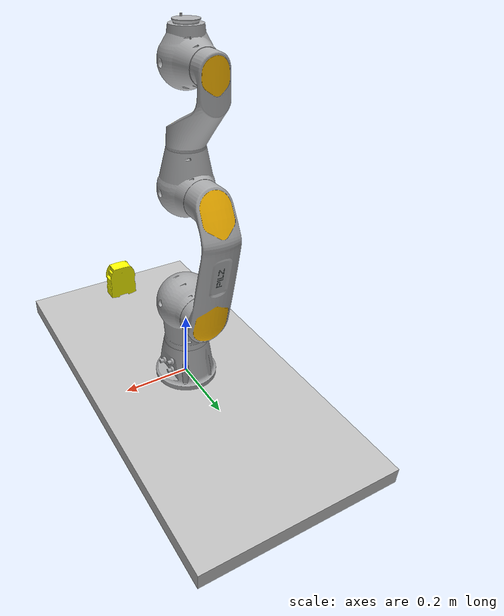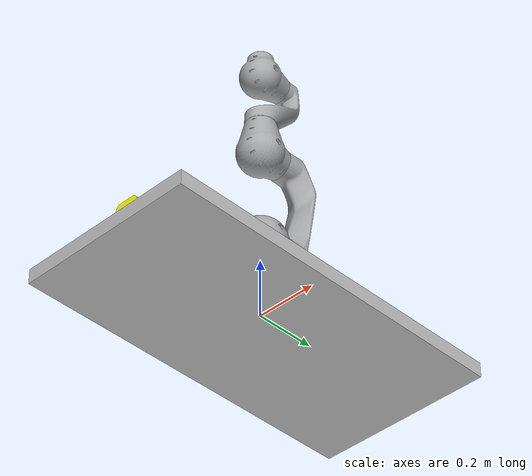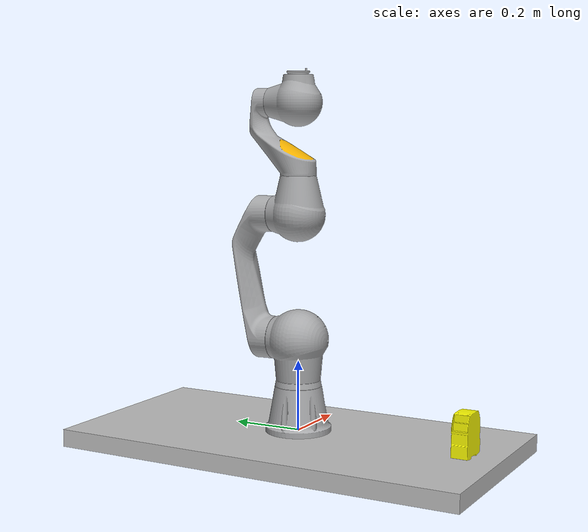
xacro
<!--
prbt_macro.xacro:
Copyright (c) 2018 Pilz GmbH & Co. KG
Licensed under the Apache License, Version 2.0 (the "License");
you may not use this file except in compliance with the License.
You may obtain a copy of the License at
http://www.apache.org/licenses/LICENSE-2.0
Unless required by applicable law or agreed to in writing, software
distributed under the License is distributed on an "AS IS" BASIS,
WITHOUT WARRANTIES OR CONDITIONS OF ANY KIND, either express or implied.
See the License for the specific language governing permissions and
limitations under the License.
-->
<?xml version="1.0" ?>

<robot name="prbt" xmlns:xacro="http://www.ros.org/wiki/xacro">

  <!-- Definition of robot name -->
  <xacro:arg name="robot_prefix" default="prbt_"/>

  <!-- macro definition of pilz lwa -->
  <xacro:include filename="$(find prbt_support)/urdf/prbt_macro.xacro" />

  <!-- gripper -->
  <xacro:arg name="gripper" default=""/>
  <xacro:property name="gripper" value="$(arg gripper)"/>

  <!-- TCP Offset -->
  <xacro:if value="${not gripper}">
    <xacro:arg name="tcp_offset_xyz" default="0 0 0"/>
    <xacro:arg name="tcp_offset_rpy" default="0 0 0"/>
  </xacro:if>

  <xacro:if value="${gripper != ''}">
    <xacro:include filename="$(find prbt_${gripper}_support)/config/${gripper}_tcp_offset.xacro" />
  </xacro:if>

  <!-- coloring from the stl file -->
  <material name="yellow">
    <color rgba="1 1 0 1"/>
  </material>

  <!-- coloring from the table -->
  <material name="grey">
    <color rgba="0.75 0.75 0.75 1"/>
  </material>

  <!-- instantiate the robot -->
  <xacro:prbt prefix="prbt_"/>

  <!-- instantiate ros2_control for manipulator -->
  <xacro:prbt_ros2_control prefix="prbt_"/>

  <link name="world">
    <visual>
      <origin rpy="0 0 0" xyz="0 0 -0.03"/>
      <geometry>
        <box size="0.6 1.2 0.05"/>
      </geometry>
      <material name="grey"/>
    </visual>
  </link>

  <xacro:if value="${gripper != ''}">
    <link name="pnoz">
        <visual>
        <origin rpy="0 0 0" xyz="0 0 0"/>
        <geometry>
            <mesh filename="package://pilz_tutorial/urdf/meshes/pnoz_assembly.stl"
            scale="0.001 0.001 0.001"/>
        </geometry>
        <material name="yellow"/>
        </visual>
        <collision>
        <origin rpy="0 0 0" xyz="0 0 -0.1"/>
        <geometry>
            <box size="0.01 0.01 0.01" />
        </geometry>
        </collision>

    </link>
  </xacro:if>
  <xacro:if value="${gripper == ''}">
    <link name="pnoz">
        <visual>
        <origin rpy="0 0 0" xyz="0 0 0"/>
        <geometry>
            <mesh filename="package://pilz_tutorial/urdf/meshes/pnoz_assembly.stl"
            scale="0.001 0.001 0.001"/>
        </geometry>
        <material name="yellow"/>
        </visual>
    </link>
  </xacro:if>

  <joint name="table_joint" type="fixed">
    <parent link="world"/>
    <child link="prbt_base_link"/>
  </joint>

  <joint name="pnoz_joint" type="fixed">
    <origin rpy="0 0 0" xyz="0 -0.5 0.115"/>
    <parent link="prbt_base_link"/>
    <child link="pnoz"/>
  </joint>

  <!-- TCP -->
  <joint name="$(arg robot_prefix)fixed_joint_tcp" type="fixed">
    <origin xyz="$(arg tcp_offset_xyz)" rpy="$(arg tcp_offset_rpy)" />
    <parent link="$(arg robot_prefix)flange"/>
    <child link="$(arg robot_prefix)tcp"/>
  </joint>
  <link name="$(arg robot_prefix)tcp" />

  <!-- If gripper given then... -->
  <xacro:if value="${gripper != ''}">
    <!-- name of the gripper -->
    <xacro:property name="gripper_name" value="$(arg robot_prefix)gripper"/>

    <!-- load gripper macro -->
    <xacro:include filename="$(find prbt_${gripper}_support)/urdf/${gripper}.urdf.xacro" />

    <!-- instantiate gripper -->
    <xacro:prbt_gripper parent="$(arg robot_prefix)flange" />

    <!-- instantiate ros2_control for gripper -->
    <xacro:prbt_gripper_ros2_control prefix="$(arg robot_prefix)"/>

    <!-- Add gripper brackets -->
    <xacro:include filename="$(find prbt_support)/urdf/simple_gripper_brackets.urdf.xacro" />
    <xacro:simple_gripper_brackets />
  </xacro:if>

</robot>

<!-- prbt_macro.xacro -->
<robot xmlns:xacro="http://www.ros.org/wiki/xacro">
  <xacro:macro name="prbt" params="prefix">

    <!-- Height of Foot -->
    <xacro:property name="L0" value="0.2604" />

    <!-- Length of the first connector -->
    <xacro:property name="L1" value="0.3500" />

    <!-- Length of the second connector -->
    <xacro:property name="L2" value="0.3070" />

    <!-- Distance last joint to flange -->
    <xacro:property name="L3" value="0.0840" />

    <!-- robot foot link -->
    <link name="${prefix}base_link">
        <inertial>
          <mass value="2.4"/>
          <inertia ixx="0"  ixy="0"  ixz="0" iyy="0" iyz="0" izz="0" />
        </inertial>
      <visual>
        <origin xyz="0 0 0" rpy="0 0 0" />
        <geometry>
          <mesh filename="package://prbt_support/meshes/foot.dae" />
        </geometry>
      </visual>

      <collision>
        <origin rpy="${pi} 0 0" xyz="0 0 0.065"/>
        <geometry>
          <cylinder length="0.13" radius="0.09275"/>
        </geometry>
      </collision>
    </link>

    <!-- arm 1 joint -->
    <!-- NOTE: velocity moderately elevated for simulation (mock_components). Real hardware: 1.57 rad/s -->
    <joint name="${prefix}joint_1" type="revolute">
      <origin xyz="0 0 ${L0}" rpy="0 0 -${pi}"/>
      <parent link="${prefix}base_link"/>
      <child link="${prefix}link_1"/>
      <axis xyz="0 0 1"/>
      <limit effort="370" velocity="5.0" lower="-2.96706" upper="2.96706"/>
      <dynamics damping="15.0" friction="11" />
    </joint>

    <!-- arm 1 link -->
    <link name="${prefix}link_1">
      <inertial>
        <mass value="7.1"/>
        <origin xyz="0 -0.026 -0.051" />
        <inertia ixx="3.53e-2" ixy="0" ixz="0" iyy="3.01e-2" iyz="9.04e-3" izz="1.87e-2" />
      </inertial>

      <visual>
        <origin xyz="0 0 0" rpy="0 0 0" />
        <geometry>
          <mesh filename="package://prbt_support/meshes/link_1.dae" />
        </geometry>
      </visual>

      <collision>
        <origin rpy="0 0 0" xyz="0 0 -0.08"/>
        <geometry>
          <cylinder length="0.10" radius="0.07"/>
        </geometry>
      </collision>
      <collision>
        <origin rpy="0 0 0" xyz="0 0 0"/>
        <geometry>
          <sphere radius="0.09"/>
        </geometry>
      </collision>
      <collision>
        <origin rpy="0 ${pi/2} ${pi/2}" xyz="0 -0.10 0"/>
        <geometry>
          <cylinder length="0.10" radius="0.065"/>
        </geometry>
      </collision>
    </link>

    <!-- joint between arm_1_link and arm_2_link -->
    <joint name="${prefix}joint_2" type="revolute">
      <origin xyz="0 0 0" rpy="${pi/2} 0 0"/>
      <parent link="${prefix}link_1"/>
      <child link="${prefix}link_2"/>
      <axis xyz="0 0 1"/>
      <limit effort="370" velocity="5.0" lower="-2.53073" upper="2.53073"/>
      <dynamics damping="12.0" friction="10.0" />
    </joint>

    <link name="${prefix}link_2">
      <inertial>
        <mass value="1.7"/>
        <origin xyz="0 0.162 0.134" />
        <inertia ixx="3.58e-2"  ixy="0"  ixz="0" iyy="3.22e-3" iyz="-1.45e-3" izz="3.66e-2" />
      </inertial>

      <visual name="first">
        <origin xyz="0 0 0" rpy="0 0 0" />
        <geometry>
          <mesh filename="package://prbt_support/meshes/link_2.dae" />
        </geometry>
      </visual>

      <collision>
        <origin rpy="${pi/18} 0 0" xyz="0 0.15 0.145"/>
        <geometry>
          <box size="0.121 0.27 0.065"/>
        </geometry>
      </collision>
      <collision>
        <origin rpy="-${pi/7} 0 0" xyz="0 0.3 0.145"/>
        <geometry>
          <box size="0.11 0.1 0.075"/>
        </geometry>
      </collision>

    </link>

    <!-- joint between arm_2_link and arm_3_link -->
    <joint name="${prefix}joint_3" type="revolute">
      <origin xyz="0 ${L1} 0" rpy="0 ${pi} 0"/>
      <parent link="${prefix}link_2"/>
      <child link="${prefix}link_3"/>
      <axis xyz="0 0 1"/>
      <limit effort="176" velocity="5.0" lower="-2.35620" upper="2.35620"/>
      <dynamics damping="4.5" friction="4.5" />
    </joint>

    <link name="${prefix}link_3">
      <inertial>
        <mass value="4.8"/>
        <origin xyz="0 0.043 -0.027" />
        <inertia ixx="2.06e-2" ixy="0" ixz="0" iyy="1.08e-2" iyz="-5.36e-3" izz="1.63e-2" />
      </inertial>

      <visual>
        <origin xyz="0 0 0" rpy="0 0 0" />
        <geometry>
          <mesh filename="package://prbt_support/meshes/link_3.dae" />
        </geometry>
      </visual>

      <collision>
        <origin rpy="0 0 0" xyz="0 0 -0.11"/>
        <geometry>
          <cylinder length="0.10" radius="0.06"/>
        </geometry>
      </collision>
      <collision>
        <origin rpy="0 0 0" xyz="0 0 0"/>
        <geometry>
          <sphere radius="0.085"/>
        </geometry>
      </collision>
      <collision>
        <origin rpy="0 ${pi/2} ${pi/2}" xyz="0 0.10 0"/>
        <geometry>
          <cylinder length="0.10" radius="0.065"/>
        </geometry>
      </collision>
    </link>

    <!-- joint between arm_3_link and arm_4_link -->
    <joint name="${prefix}joint_4" type="revolute">
      <origin xyz="0 0 0" rpy="-${pi/2} ${pi} 0" />
      <parent link="${prefix}link_3"/>
      <child link="${prefix}link_4"/>
      <axis xyz="0 0 1" />
      <limit effort="176" velocity="5.0" lower="-2.96706" upper="2.96706"/>
      <dynamics damping="4.2" friction="3.8" />
    </joint>

    <link name="${prefix}link_4">
      <inertial>
        <mass value="0.9"/>
        <origin xyz="0 -0.061 0.204" />
        <inertia ixx="6.79e-3" ixy="0" ixz="0" iyy="4.91e-3" iyz="2.67e-3" izz="3.40e-3" />
      </inertial>

      <visual>
        <origin xyz="0 0 0" rpy="0 0 0" />
        <geometry>
          <mesh filename="package://prbt_support/meshes/link_4.dae" />
        </geometry>
      </visual>

      <collision>
        <origin rpy="${pi/3.25} 0 0" xyz="0 -0.04 0.162"/>
        <geometry>
          <box size="0.121 0.08 0.17"/>
        </geometry>
      </collision>
      <collision>
        <origin rpy="-${pi/30} 0 0" xyz="0 -0.115 0.25"/>
        <geometry>
          <box size="0.09 0.06 0.12"/>
        </geometry>
      </collision>

    </link>

    <!-- joint between arm_4_link and arm_5_link -->
    <joint name="${prefix}joint_5" type="revolute">
      <origin xyz="0 0 ${L2}" rpy="${pi/2} 0 ${pi}" />
      <parent link="${prefix}link_4"/>
      <child link="${prefix}link_5"/>
      <axis xyz="0 0 1" />
      <limit effort="41.6" velocity="200.0" lower="-2.96706" upper="2.96706" />
      <dynamics damping="1.5" friction="3.5" />
    </joint>

    <link name="${prefix}link_5">
      <inertial>
        <mass value="2.6"/>
        <origin xyz="-0.001 0.021 -0.032" />
        <inertia ixx="7.37e-3" ixy="4.78e-6" ixz="6.00e-5" iyy="5.87e-3" iyz="-1.71e-3" izz="3.96e-3" />
      </inertial>

      <visual>
        <origin xyz="0 0 0" rpy="0 0 0" />
        <geometry>
          <mesh filename="package://prbt_support/meshes/link_5.dae"/>
        </geometry>
      </visual>

      <collision>
        <origin rpy="0 0 0" xyz="0 0 -0.095"/>
        <geometry>
          <cylinder length="0.08" radius="0.045"/>
        </geometry>
      </collision>
      <collision>
        <origin rpy="0 0 0" xyz="0 0 -0.06"/>
        <geometry>
          <cylinder length="0.04" radius="0.0545"/>
        </geometry>
      </collision>
      <collision>
        <origin rpy="0 0 0" xyz="0 0 0"/>
        <geometry>
          <sphere radius="0.07"/>
        </geometry>
      </collision>
      <collision>
        <origin rpy="0 ${pi/2} ${pi/2}" xyz="0 0.05 0"/>
        <geometry>
          <cylinder length="0.03" radius="0.05"/>
        </geometry>
      </collision>
      <collision>
        <origin rpy="0 ${pi/2} ${pi/2}" xyz="0 0.05 0"/>
        <geometry>
          <cylinder length="0.049" radius="0.0435"/>
        </geometry>
      </collision>
    </link>

    <!-- joint between arm_5_link and flange -->
    <joint name="${prefix}joint_6" type="revolute">
      <origin xyz="0 ${L3} 0" rpy="-${pi/2} 0 0" />
      <parent link="${prefix}link_5"/>
      <child link="${prefix}flange"/>
      <axis xyz="0 0 1" />
      <limit effort="20.1" velocity="5.0" lower="-3.12414" upper="3.12414" />
      <dynamics damping="4.5" friction="7.0" />
    </joint>

    <!-- Flange -->
    <link name="${prefix}flange">
      <inertial>
        <mass value="0.02" />
        <origin xyz="0 0 0" />
        <inertia ixx="0" ixy="0" ixz="0" iyy="0" iyz="0" izz="0" />
      </inertial>

      <visual>
        <origin xyz="0 0 0" rpy="0 0 0" />
        <geometry>
          <mesh filename="package://prbt_support/meshes/flange.dae"/>
        </geometry>
      </visual>

      <collision>
        <origin rpy="0 0 0" xyz="0 0 -0.0035"/>
        <geometry>
          <cylinder length="0.02" radius="0.0331"/>
        </geometry>
      </collision>
    </link>

    <!-- ROS-Industrial 'base' frame: base_link to robot world coordinate system transform -->
    <link name="${prefix}base" />
    <joint name="${prefix}base_link-base" type="fixed">
      <origin xyz="0 0 0" rpy="0 0 0"/>
      <parent link="${prefix}base_link"/>
      <child link="${prefix}base"/>
    </joint>

    <!-- ROS-Industrial 'tool0' frame: all-zeros tool frame -->
    <link name="${prefix}tool0" />
    <joint name="${prefix}flange-tool0" type="fixed">
      <origin xyz="0 0 0" rpy="0 0 0" />
      <parent link="${prefix}flange" />
      <child link="${prefix}tool0" />
    </joint>

  </xacro:macro>

  <!-- ros2_control macro for the manipulator -->
  <xacro:macro name="prbt_ros2_control" params="prefix">
    <ros2_control name="prbt_manipulator" type="system">
      <hardware>
        <plugin>mock_components/GenericSystem</plugin>
      </hardware>
      <joint name="${prefix}joint_1">
        <command_interface name="position"/>
        <state_interface name="position"><param name="initial_value">0.0</param></state_interface>
        <state_interface name="velocity"/>
      </joint>
      <joint name="${prefix}joint_2">
        <command_interface name="position"/>
        <state_interface name="position"><param name="initial_value">0.0</param></state_interface>
        <state_interface name="velocity"/>
      </joint>
      <joint name="${prefix}joint_3">
        <command_interface name="position"/>
        <state_interface name="position"><param name="initial_value">0.0</param></state_interface>
        <state_interface name="velocity"/>
      </joint>
      <joint name="${prefix}joint_4">
        <command_interface name="position"/>
        <state_interface name="position"><param name="initial_value">0.0</param></state_interface>
        <state_interface name="velocity"/>
      </joint>
      <joint name="${prefix}joint_5">
        <command_interface name="position"/>
        <state_interface name="position"><param name="initial_value">0.0</param></state_interface>
        <state_interface name="velocity"/>
      </joint>
      <joint name="${prefix}joint_6">
        <command_interface name="position"/>
        <state_interface name="position"><param name="initial_value">0.0</param></state_interface>
        <state_interface name="velocity"/>
      </joint>
    </ros2_control>
  </xacro:macro>

  <!-- ros2_control macro for the gripper -->
  <xacro:macro name="prbt_gripper_ros2_control" params="prefix">
    <ros2_control name="prbt_gripper" type="system">
      <hardware>
        <plugin>mock_components/GenericSystem</plugin>
      </hardware>
      <joint name="${prefix}gripper_finger_left_joint">
        <command_interface name="position"/>
        <state_interface name="position"><param name="initial_value">0.0</param></state_interface>
        <state_interface name="velocity"/>
      </joint>
    </ros2_control>
  </xacro:macro>

</robot>
